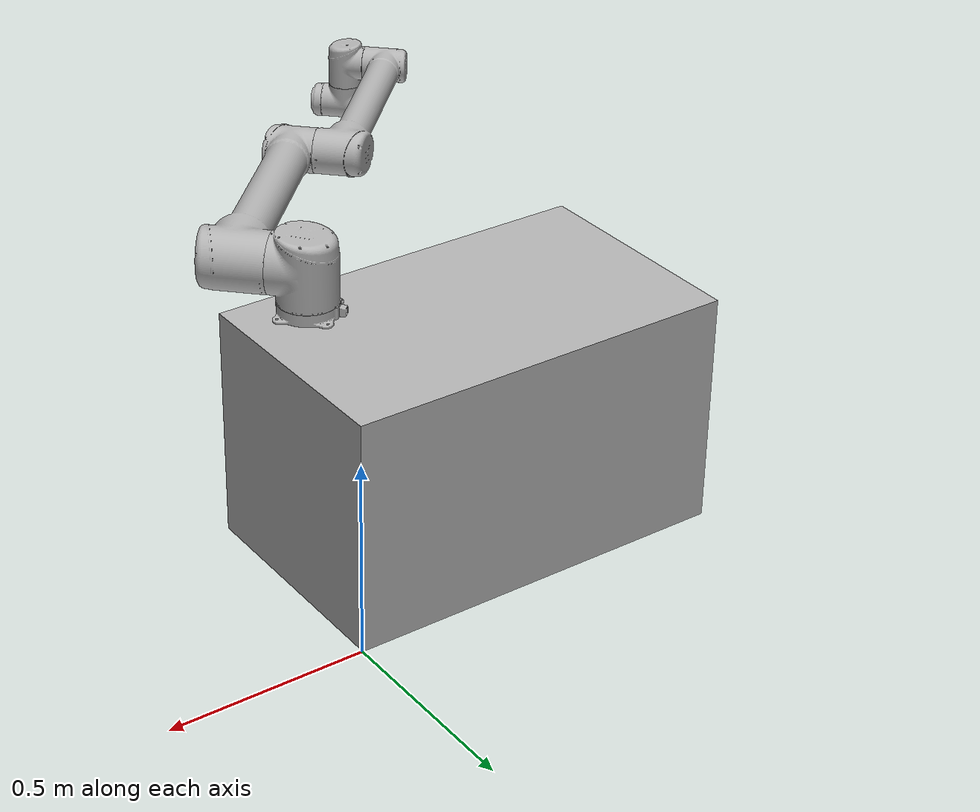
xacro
<?xml version="1.0"?>
<robot xmlns:xacro="http://ros.org/wiki/xacro"
       name="ur10" >

  <!-- common stuff -->
  <xacro:include filename="$(find ur_description)/urdf/common.gazebo.xacro" />

  <!-- ur10 -->
  <xacro:include filename="$(find ur_description)/urdf/ur10VelControl.urdf.xacro" />

 <link name="world" />

  <joint name="world-robot_base_joint" type="fixed">
    <origin xyz="-0.50 -0.30 0.30" rpy="0 0 0" />
    <parent link="world"/>
    <child link="robot_base"/>
  </joint>

  <link name="robot_base">
      <visual>
        <origin rpy="0 0 0" xyz="0 0 0"/>
        <geometry>
          <box size="1.0 0.60 0.60"/>
        </geometry>
        <material name="LightGrey">
          <color rgba="0.7 0.7 0.7 1.0"/>
        </material>
      </visual>
  </link>

  <joint name="world_joint" type="fixed">
    <parent link="robot_base" />
    <child link = "arm_base_link" />
    <origin xyz="0.324 -0.191 0.2925" rpy="0.0 0.0 -2.3562" />
  </joint>

  <!-- arm -->
  <xacro:ur10_robot prefix="arm_" joint_limited="false"/>

  <!-- ros_control plugin -->
  <gazebo>
    <plugin name="ros_control" filename="libhwi_switch_gazebo_ros_control.so">
      <robotNamespace>arm</robotNamespace>
      <filterJointsParam>joint_names</filterJointsParam>
    </plugin>
  </gazebo>

</robot>

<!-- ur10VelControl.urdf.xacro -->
<robot xmlns:xacro="http://wiki.ros.org/xacro">

<!--
  Author: Kelsey Hawkins
  Contributers: Jimmy Da Silva, Ajit Krisshna N L, Muhammad Asif Rana
-->

  <xacro:include filename="$(find ur_description)/urdf/urVelControl.transmission.xacro" />
  <xacro:include filename="$(find ur_description)/urdf/urVelControl.gazebo.xacro" />

  <xacro:property name="pi" value="3.14159265" />

  <!-- Inertia parameters -->
  <xacro:property name="base_mass" value="4.0" />  <!-- This mass might be incorrect -->
  <xacro:property name="shoulder_mass" value="1" />
  <xacro:property name="upper_arm_mass" value="1" />
  <xacro:property name="forearm_mass" value="1" />
  <xacro:property name="wrist_1_mass" value="0.5" />
  <xacro:property name="wrist_2_mass" value="0.5" />
  <xacro:property name="wrist_3_mass" value="0.5" />

  <xacro:property name="shoulder_cog" value="0.00008 0.00244 -0.037" />
  <xacro:property name="upper_arm_cog" value="0.00001 0.15061 0.38757" />
  <xacro:property name="forearm_cog" value="-0.00012 0.06112 0.1984" />
  <xacro:property name="wrist_1_cog" value="-0.00021 -0.00112 0.02269" />
  <xacro:property name="wrist_2_cog" value="-0.00021 0.00112 0.002269" />
  <xacro:property name="wrist_3_cog" value="0 -0.001156 -0.00149" />

  <!-- Kinematic model -->
  <!-- Properties from urcontrol.conf -->
  <xacro:property name="ur10_d1" value="0.1273" />
  <xacro:property name="ur10_a2" value="-0.612" />
  <xacro:property name="ur10_a3" value="-0.5723" />
  <xacro:property name="ur10_d4" value="0.163941" />
  <xacro:property name="ur10_d5" value="0.1157" />
  <xacro:property name="ur10_d6" value="0.0922" />

  <!-- Arbitrary offsets for shoulder/elbow joints -->
  <xacro:property name="shoulder_offset" value="0.220941" />  <!-- measured from model -->
  <xacro:property name="elbow_offset" value="-0.1719" /> <!-- measured from model -->

  <!-- link lengths used in model -->
  <xacro:property name="shoulder_height" value="${ur10_d1}" />
  <xacro:property name="upper_arm_length" value="${-ur10_a2}" />
  <xacro:property name="forearm_length" value="${-ur10_a3}" />
  <xacro:property name="wrist_1_length" value="${ur10_d4 - elbow_offset - shoulder_offset}" />
  <xacro:property name="wrist_2_length" value="${ur10_d5}" />
  <xacro:property name="wrist_3_length" value="${ur10_d6}" />

  <xacro:macro name="cylinder_inertial" params="radius length mass *origin">
    <inertial>
      <mass value="${mass}" />
      <xacro:insert_block name="origin" />
      <inertia ixx="${0.0833333 * mass * (3 * radius * radius + length * length)}" ixy="0.0" ixz="0.0"
        iyy="${0.0833333 * mass * (3 * radius * radius + length * length)}" iyz="0.0"
        izz="${0.5 * mass * radius * radius}" />
    </inertial>
  </xacro:macro>

  <xacro:macro name="ur10_robot" params="prefix joint_limited
                 shoulder_pan_lower_limit:=${-0.5*pi}    shoulder_pan_upper_limit:=${0.2}
                 shoulder_lift_lower_limit:=${-pi}    shoulder_lift_upper_limit:=${pi}
                 elbow_joint_lower_limit:=${-pi}    elbow_joint_upper_limit:=${0.2}
                 wrist_1_lower_limit:=${-2*pi}    wrist_1_upper_limit:=${-0.5}
                 wrist_2_lower_limit:=${-pi}    wrist_2_upper_limit:=${pi}
                 wrist_3_lower_limit:=${0.5-pi}    wrist_3_upper_limit:=${0.5*pi}">

    <link name="${prefix}base_link" >
      <visual>
        <geometry>
          <mesh filename="package://ur_description/meshes/ur10/visual/base.dae"/>
        </geometry>
        <material name="LightGrey">
          <color rgba="0.7 0.7 0.7 1.0"/>
        </material>
      </visual>
      <collision>
        <geometry>
          <mesh filename="package://ur_description/meshes/ur10/collision/base.stl"/>
        </geometry>
      </collision>
      <xacro:cylinder_inertial radius="0.075" length="0.038" mass="${base_mass}">
        <origin xyz="0.0 0.0 0.0" rpy="0 0 0" />
      </xacro:cylinder_inertial>
    </link>

    <joint name="${prefix}shoulder_pan_joint" type="revolute">
      <parent link="${prefix}base_link" />
      <child link = "${prefix}shoulder_link" />
      <origin xyz="0.0 0.0 ${shoulder_height}" rpy="0.0 0.0 0.0" />
      <axis xyz="0 0 1" />
      <xacro:unless value="${joint_limited}">
        <limit lower="${-2.0 * pi}" upper="${2.0 * pi}" effort="330.0" velocity="2.0"/>
      </xacro:unless>
      <xacro:if value="${joint_limited}">
        <limit lower="${shoulder_pan_lower_limit}" upper="${shoulder_pan_upper_limit}" effort="330.0" velocity="2.0"/>
      </xacro:if>
      <dynamics damping="0.0" friction="0.0"/>
    </joint>

    <link name="${prefix}shoulder_link">
      <visual>
        <geometry>
          <mesh filename="package://ur_description/meshes/ur10/visual/shoulder.dae"/>
        </geometry>
        <material name="LightGrey">
          <color rgba="0.7 0.7 0.7 1.0"/>
        </material>
      </visual>
      <collision>
        <geometry>
          <mesh filename="package://ur_description/meshes/ur10/collision/shoulder.stl"/>
        </geometry>
      </collision>
      <xacro:cylinder_inertial radius="0.075" length="0.178" mass="${shoulder_mass}">
        <origin xyz="0.0 0.0 0.0" rpy="0 0 0" />
      </xacro:cylinder_inertial>
    </link>

    <joint name="${prefix}shoulder_lift_joint" type="revolute">
      <parent link="${prefix}shoulder_link" />
      <child link = "${prefix}upper_arm_link" />
      <origin xyz="0.0 ${shoulder_offset} 0.0" rpy="0.0 ${pi / 2.0} 0.0" />
      <axis xyz="0 1 0" />
      <xacro:unless value="${joint_limited}">
        <limit lower="${-2.0 * pi}" upper="${2.0 * pi}" effort="330.0" velocity="2.0"/>
      </xacro:unless>
      <xacro:if value="${joint_limited}">
        <limit lower="${shoulder_lift_lower_limit}" upper="${shoulder_lift_upper_limit}" effort="330.0" velocity="2.0"/>
      </xacro:if>
      <dynamics damping="0.0" friction="0.0"/>
    </joint>

    <link name="${prefix}upper_arm_link">
      <visual>
        <geometry>
          <mesh filename="package://ur_description/meshes/ur10/visual/upperarm.dae"/>
        </geometry>
        <material name="LightGrey">
          <color rgba="0.7 0.7 0.7 1.0"/>
        </material>
      </visual>
      <collision>
        <geometry>
          <mesh filename="package://ur_description/meshes/ur10/collision/upperarm.stl"/>
        </geometry>
      </collision>
      <xacro:cylinder_inertial radius="0.075" length="${-ur10_a2}" mass="${upper_arm_mass}">
        <origin xyz="0.0 0.0 ${-ur10_a2/2.0}" rpy="0 0 0" />
      </xacro:cylinder_inertial>
    </link>

    <joint name="${prefix}elbow_joint" type="revolute">
      <parent link="${prefix}upper_arm_link" />
      <child link = "${prefix}forearm_link" />
      <origin xyz="0.0 ${elbow_offset} ${upper_arm_length}" rpy="0.0 0.0 0.0" />
      <axis xyz="0 1 0" />
      <xacro:unless value="${joint_limited}">
        <limit lower="${-2.0 * pi}" upper="${2.0 * pi}" effort="150.0" velocity="2.0"/>
      </xacro:unless>
      <xacro:if value="${joint_limited}">
        <limit lower="${elbow_joint_lower_limit}" upper="${elbow_joint_upper_limit}" effort="150.0" velocity="2.0"/>
      </xacro:if>
      <dynamics damping="0.0" friction="0.0"/>
    </joint>

    <link name="${prefix}forearm_link">
      <visual>
         <geometry>
          <mesh filename="package://ur_description/meshes/ur10/visual/forearm.dae"/>
        </geometry>
        <material name="LightGrey">
          <color rgba="0.7 0.7 0.7 1.0"/>
        </material>
      </visual>
      <collision>
        <geometry>
          <mesh filename="package://ur_description/meshes/ur10/collision/forearm.stl"/>
        </geometry>
      </collision>
      <xacro:cylinder_inertial radius="0.075" length="${-ur10_a3}" mass="${forearm_mass}">
        <origin xyz="0.0 0.0 ${-ur10_a3/2.0}" rpy="0 0 0" />
      </xacro:cylinder_inertial>
    </link>

    <joint name="${prefix}wrist_1_joint" type="revolute">
      <parent link="${prefix}forearm_link" />
      <child link = "${prefix}wrist_1_link" />
      <origin xyz="0.0 0.0 ${forearm_length}" rpy="0.0 ${pi / 2.0} 0.0" />
      <axis xyz="0 1 0" />
      <xacro:unless value="${joint_limited}">
        <limit lower="${-2.0 * pi}" upper="${2.0 * pi}" effort="54.0" velocity="2.0"/>
      </xacro:unless>
      <xacro:if value="${joint_limited}">
        <limit lower="${wrist_1_lower_limit}" upper="${wrist_1_upper_limit}" effort="54.0" velocity="2.0"/>
      </xacro:if>
      <dynamics damping="0.0" friction="0.0"/>
    </joint>

    <link name="${prefix}wrist_1_link">
      <visual>
        <geometry>
          <mesh filename="package://ur_description/meshes/ur10/visual/wrist1.dae"/>
        </geometry>
        <material name="LightGrey">
          <color rgba="0.7 0.7 0.7 1.0"/>
        </material>
      </visual>
      <collision>
        <geometry>
          <mesh filename="package://ur_description/meshes/ur10/collision/wrist1.stl"/>
        </geometry>
      </collision>
      <xacro:cylinder_inertial radius="0.075" length="0.12" mass="${wrist_1_mass}">
        <origin xyz="0.0 0.0 0.0" rpy="0 0 0" />
      </xacro:cylinder_inertial>
    </link>

    <joint name="${prefix}wrist_2_joint" type="revolute">
      <parent link="${prefix}wrist_1_link" />
      <child link = "${prefix}wrist_2_link" />
      <origin xyz="0.0 ${wrist_1_length} 0.0" rpy="0.0 0.0 0.0" />
      <axis xyz="0 0 1" />
      <xacro:unless value="${joint_limited}">
        <limit lower="${-2.0 * pi}" upper="${2.0 * pi}" effort="54.0" velocity="2.0"/>
      </xacro:unless>
      <xacro:if value="${joint_limited}">
        <limit lower="${wrist_2_lower_limit}" upper="${wrist_2_upper_limit}" effort="54.0" velocity="2.0"/>
      </xacro:if>
      <dynamics damping="0.0" friction="0.0"/>
    </joint>

    <link name="${prefix}wrist_2_link">
      <visual>
        <geometry>
          <mesh filename="package://ur_description/meshes/ur10/visual/wrist2.dae"/>
        </geometry>
        <material name="LightGrey">
          <color rgba="0.7 0.7 0.7 1.0"/>
        </material>
      </visual>
      <collision>
        <geometry>
          <mesh filename="package://ur_description/meshes/ur10/collision/wrist2.stl"/>
        </geometry>
      </collision>
      <xacro:cylinder_inertial radius="0.075" length="0.12" mass="${wrist_2_mass}">
        <origin xyz="0.0 0.0 0.0" rpy="0 0 0" />
      </xacro:cylinder_inertial>
    </link>

    <joint name="${prefix}wrist_3_joint" type="revolute">
      <parent link="${prefix}wrist_2_link" />
      <child link = "${prefix}wrist_3_link" />
      <origin xyz="0.0 0.0 ${wrist_2_length}" rpy="0.0 0.0 0.0" />
      <axis xyz="0 1 0" />
      <xacro:unless value="${joint_limited}">
        <limit lower="${-2.0 * pi}" upper="${2.0 * pi}" effort="54.0" velocity="2.0"/>
      </xacro:unless>
      <xacro:if value="${joint_limited}">
        <limit lower="${wrist_3_lower_limit}" upper="${wrist_3_upper_limit}" effort="54.0" velocity="2.0"/>
      </xacro:if>
      <dynamics damping="0.0" friction="0.0"/>
    </joint>

    <link name="${prefix}wrist_3_link">
      <visual>
        <geometry>
          <mesh filename="package://ur_description/meshes/ur10/visual/wrist3.dae"/>
        </geometry>
        <material name="LightGrey">
          <color rgba="0.7 0.7 0.7 1.0"/>
        </material>
      </visual>
      <collision>
        <geometry>
          <mesh filename="package://ur_description/meshes/ur10/collision/wrist3.stl"/>
        </geometry>
      </collision>
      <xacro:cylinder_inertial radius="0.075" length="0.12" mass="${wrist_3_mass}">
        <origin xyz="0.0 0.0 0.0" rpy="0 0 0" />
      </xacro:cylinder_inertial>
    </link>

    <joint name="${prefix}ee_fixed_joint" type="fixed">
      <parent link="${prefix}wrist_3_link" />
      <child link = "${prefix}ee_link" />
      <origin xyz="0.0 ${wrist_3_length} 0.0" rpy="0.0 0.0 ${pi/2.0}" />
    </joint>

    <link name="${prefix}ee_link">
      <collision>
        <geometry>
          <box size="0.01 0.01 0.01"/>
        </geometry>
        <origin rpy="0 0 0" xyz="-0.01 0 0"/>
      </collision>
    </link>

    <xacro:ur_arm_transmission prefix="${prefix}" />
    <xacro:ur_arm_gazebo prefix="${prefix}" />

    <!-- ROS base_link to UR 'Base' Coordinates transform -->
    <link name="${prefix}base"/>
    <joint name="${prefix}base_link-base_fixed_joint" type="fixed">
      <!-- NOTE: this rotation is only needed as long as base_link itself is
                 not corrected wrt the real robot (ie: rotated over 180
                 degrees)
      -->
      <origin xyz="0 0 0" rpy="0 0 ${-pi}"/>
      <parent link="${prefix}base_link"/>
      <child link="${prefix}base"/>
    </joint>

    <!-- Frame coincident with all-zeros TCP on UR controller -->
    <link name="${prefix}tool0">
      <collision>
        <geometry>
          <box size="0.01 0.01 0.01"/>
        </geometry>
        <origin rpy="0 0 0" xyz="-0.01 0 0"/>
      </collision>
    </link>

    <joint name="${prefix}wrist_3_link-tool0_fixed_joint" type="fixed">
      <origin xyz="0.0 ${wrist_3_length+0.14} 0.0" rpy="0.0 0.0 ${pi/2.0}" />
      <parent link="${prefix}wrist_3_link"/>
      <child link="${prefix}tool0"/>
      <xacro:unless value="${joint_limited}">
        <limit lower="${-2.0 * pi}" upper="${2.0 * pi}" effort="54.0" velocity="3.2"/>
      </xacro:unless>
      <xacro:if value="${joint_limited}">
        <limit lower="${wrist_3_lower_limit}" upper="${wrist_3_upper_limit}" effort="54.0" velocity="3.2"/>
      </xacro:if>
      <dynamics damping="0.0" friction="0.0"/>
    </joint>

  </xacro:macro>
</robot>
